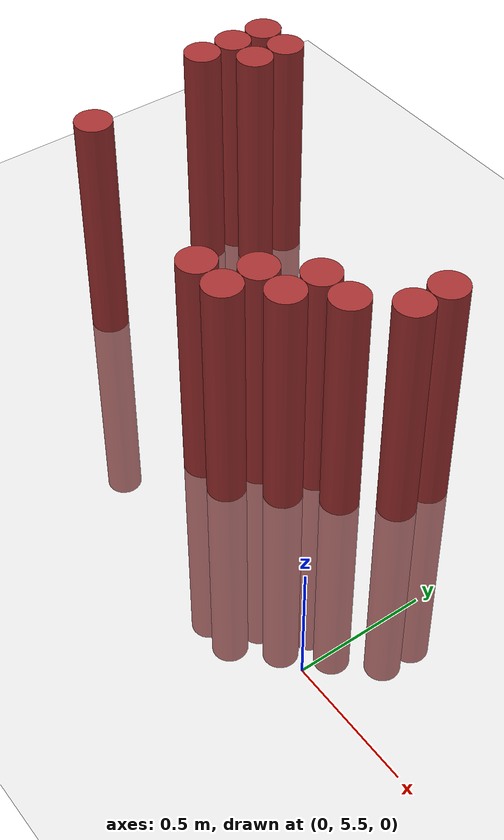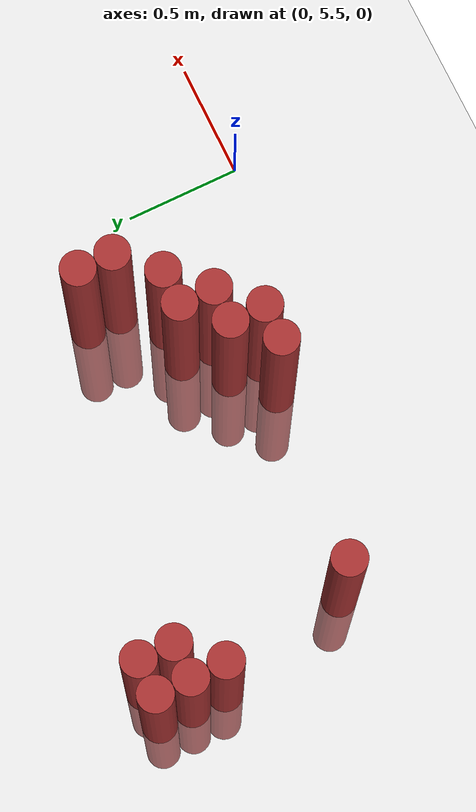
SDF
<sdf version="1.6">
 <world name="default">
  <model name="ground_plane">
   <static>1</static>
   <link name="link">
    <collision name="collision">
     <geometry><plane><normal>0 0 1</normal><size>100 100</size></plane></geometry>
     <surface><friction><ode><mu>100</mu><mu2>50</mu2></ode></friction></surface>
    </collision>
    <visual name="visual">
     <cast_shadows>0</cast_shadows>
     <geometry><plane><normal>0 0 1</normal><size>100 100</size></plane></geometry>
     <material>
      <script><uri>file://media/materials/scripts/gazebo.material</uri><name>Gazebo/Grey</name></script>
     </material>
    </visual>
   </link>
  </model>
  <model name="unit_cylinder_161">
   <static>1</static>
   <pose>-2.025000 6.525000 0.000000 0.000000 0.000000 0.000000</pose>
   <link name="link">
    <inertial>
     <mass>1</mass>
     <inertia><ixx>0.145833</ixx><ixy>0</ixy><ixz>0</ixz><iyy>0.145833</iyy><iyz>0</iyz><izz>0.125</izz></inertia>
    </inertial>
    <collision name="collision">
     <geometry><cylinder><radius>0.075000</radius><length>2</length></cylinder></geometry>
    </collision>
    <visual name="visual">
     <geometry><cylinder><radius>0.075000</radius><length>2</length></cylinder></geometry>
     <material>
      <ambient>0.648000 0.192000 0.192000 1</ambient>
      <diffuse>0.648000 0.192000 0.192000 1</diffuse>
     </material>
     <material>
      <script><name>Gazebo/Grey</name><uri>file://media/materials/scripts/gazebo.material</uri></script>
     </material>
    </visual>
   </link>
  </model>
  <model name="unit_cylinder_162">
   <static>1</static>
   <pose>-2.025000 6.675000 0.000000 0.000000 0.000000 0.000000</pose>
   <link name="link">
    <inertial>
     <mass>1</mass>
     <inertia><ixx>0.145833</ixx><ixy>0</ixy><ixz>0</ixz><iyy>0.145833</iyy><iyz>0</iyz><izz>0.125</izz></inertia>
    </inertial>
    <collision name="collision">
     <geometry><cylinder><radius>0.075000</radius><length>2</length></cylinder></geometry>
    </collision>
    <visual name="visual">
     <geometry><cylinder><radius>0.075000</radius><length>2</length></cylinder></geometry>
     <material>
      <ambient>0.648000 0.192000 0.192000 1</ambient>
      <diffuse>0.648000 0.192000 0.192000 1</diffuse>
     </material>
     <material>
      <script><name>Gazebo/Grey</name><uri>file://media/materials/scripts/gazebo.material</uri></script>
     </material>
    </visual>
   </link>
  </model>
  <model name="unit_cylinder_163">
   <static>1</static>
   <pose>-2.025000 6.825000 0.000000 0.000000 0.000000 0.000000</pose>
   <link name="link">
    <inertial>
     <mass>1</mass>
     <inertia><ixx>0.145833</ixx><ixy>0</ixy><ixz>0</ixz><iyy>0.145833</iyy><iyz>0</iyz><izz>0.125</izz></inertia>
    </inertial>
    <collision name="collision">
     <geometry><cylinder><radius>0.075000</radius><length>2</length></cylinder></geometry>
    </collision>
    <visual name="visual">
     <geometry><cylinder><radius>0.075000</radius><length>2</length></cylinder></geometry>
     <material>
      <ambient>0.648000 0.192000 0.192000 1</ambient>
      <diffuse>0.648000 0.192000 0.192000 1</diffuse>
     </material>
     <material>
      <script><name>Gazebo/Grey</name><uri>file://media/materials/scripts/gazebo.material</uri></script>
     </material>
    </visual>
   </link>
  </model>
  <model name="unit_cylinder_166">
   <static>1</static>
   <pose>-1.875000 5.925000 0.000000 0.000000 0.000000 0.000000</pose>
   <link name="link">
    <inertial>
     <mass>1</mass>
     <inertia><ixx>0.145833</ixx><ixy>0</ixy><ixz>0</ixz><iyy>0.145833</iyy><iyz>0</iyz><izz>0.125</izz></inertia>
    </inertial>
    <collision name="collision">
     <geometry><cylinder><radius>0.075000</radius><length>2</length></cylinder></geometry>
    </collision>
    <visual name="visual">
     <geometry><cylinder><radius>0.075000</radius><length>2</length></cylinder></geometry>
     <material>
      <ambient>0.648000 0.192000 0.192000 1</ambient>
      <diffuse>0.648000 0.192000 0.192000 1</diffuse>
     </material>
     <material>
      <script><name>Gazebo/Grey</name><uri>file://media/materials/scripts/gazebo.material</uri></script>
     </material>
    </visual>
   </link>
  </model>
  <model name="unit_cylinder_167">
   <static>1</static>
   <pose>-1.875000 6.675000 0.000000 0.000000 0.000000 0.000000</pose>
   <link name="link">
    <inertial>
     <mass>1</mass>
     <inertia><ixx>0.145833</ixx><ixy>0</ixy><ixz>0</ixz><iyy>0.145833</iyy><iyz>0</iyz><izz>0.125</izz></inertia>
    </inertial>
    <collision name="collision">
     <geometry><cylinder><radius>0.075000</radius><length>2</length></cylinder></geometry>
    </collision>
    <visual name="visual">
     <geometry><cylinder><radius>0.075000</radius><length>2</length></cylinder></geometry>
     <material>
      <ambient>0.648000 0.192000 0.192000 1</ambient>
      <diffuse>0.648000 0.192000 0.192000 1</diffuse>
     </material>
     <material>
      <script><name>Gazebo/Grey</name><uri>file://media/materials/scripts/gazebo.material</uri></script>
     </material>
    </visual>
   </link>
  </model>
  <model name="unit_cylinder_168">
   <static>1</static>
   <pose>-1.875000 6.825000 0.000000 0.000000 0.000000 0.000000</pose>
   <link name="link">
    <inertial>
     <mass>1</mass>
     <inertia><ixx>0.145833</ixx><ixy>0</ixy><ixz>0</ixz><iyy>0.145833</iyy><iyz>0</iyz><izz>0.125</izz></inertia>
    </inertial>
    <collision name="collision">
     <geometry><cylinder><radius>0.075000</radius><length>2</length></cylinder></geometry>
    </collision>
    <visual name="visual">
     <geometry><cylinder><radius>0.075000</radius><length>2</length></cylinder></geometry>
     <material>
      <ambient>0.648000 0.192000 0.192000 1</ambient>
      <diffuse>0.648000 0.192000 0.192000 1</diffuse>
     </material>
     <material>
      <script><name>Gazebo/Grey</name><uri>file://media/materials/scripts/gazebo.material</uri></script>
     </material>
    </visual>
   </link>
  </model>
  <model name="unit_cylinder_173">
   <static>1</static>
   <pose>-0.975000 5.775000 0.000000 0.000000 0.000000 0.000000</pose>
   <link name="link">
    <inertial>
     <mass>1</mass>
     <inertia><ixx>0.145833</ixx><ixy>0</ixy><ixz>0</ixz><iyy>0.145833</iyy><iyz>0</iyz><izz>0.125</izz></inertia>
    </inertial>
    <collision name="collision">
     <geometry><cylinder><radius>0.075000</radius><length>2</length></cylinder></geometry>
    </collision>
    <visual name="visual">
     <geometry><cylinder><radius>0.075000</radius><length>2</length></cylinder></geometry>
     <material>
      <ambient>0.648000 0.192000 0.192000 1</ambient>
      <diffuse>0.648000 0.192000 0.192000 1</diffuse>
     </material>
     <material>
      <script><name>Gazebo/Grey</name><uri>file://media/materials/scripts/gazebo.material</uri></script>
     </material>
    </visual>
   </link>
  </model>
  <model name="unit_cylinder_177">
   <static>1</static>
   <pose>-0.825000 5.775000 0.000000 0.000000 0.000000 0.000000</pose>
   <link name="link">
    <inertial>
     <mass>1</mass>
     <inertia><ixx>0.145833</ixx><ixy>0</ixy><ixz>0</ixz><iyy>0.145833</iyy><iyz>0</iyz><izz>0.125</izz></inertia>
    </inertial>
    <collision name="collision">
     <geometry><cylinder><radius>0.075000</radius><length>2</length></cylinder></geometry>
    </collision>
    <visual name="visual">
     <geometry><cylinder><radius>0.075000</radius><length>2</length></cylinder></geometry>
     <material>
      <ambient>0.648000 0.192000 0.192000 1</ambient>
      <diffuse>0.648000 0.192000 0.192000 1</diffuse>
     </material>
     <material>
      <script><name>Gazebo/Grey</name><uri>file://media/materials/scripts/gazebo.material</uri></script>
     </material>
    </visual>
   </link>
  </model>
  <model name="unit_cylinder_178">
   <static>1</static>
   <pose>-0.825000 5.925000 0.000000 0.000000 0.000000 0.000000</pose>
   <link name="link">
    <inertial>
     <mass>1</mass>
     <inertia><ixx>0.145833</ixx><ixy>0</ixy><ixz>0</ixz><iyy>0.145833</iyy><iyz>0</iyz><izz>0.125</izz></inertia>
    </inertial>
    <collision name="collision">
     <geometry><cylinder><radius>0.075000</radius><length>2</length></cylinder></geometry>
    </collision>
    <visual name="visual">
     <geometry><cylinder><radius>0.075000</radius><length>2</length></cylinder></geometry>
     <material>
      <ambient>0.648000 0.192000 0.192000 1</ambient>
      <diffuse>0.648000 0.192000 0.192000 1</diffuse>
     </material>
     <material>
      <script><name>Gazebo/Grey</name><uri>file://media/materials/scripts/gazebo.material</uri></script>
     </material>
    </visual>
   </link>
  </model>
  <model name="unit_cylinder_180">
   <static>1</static>
   <pose>-0.675000 5.925000 0.000000 0.000000 0.000000 0.000000</pose>
   <link name="link">
    <inertial>
     <mass>1</mass>
     <inertia><ixx>0.145833</ixx><ixy>0</ixy><ixz>0</ixz><iyy>0.145833</iyy><iyz>0</iyz><izz>0.125</izz></inertia>
    </inertial>
    <collision name="collision">
     <geometry><cylinder><radius>0.075000</radius><length>2</length></cylinder></geometry>
    </collision>
    <visual name="visual">
     <geometry><cylinder><radius>0.075000</radius><length>2</length></cylinder></geometry>
     <material>
      <ambient>0.648000 0.192000 0.192000 1</ambient>
      <diffuse>0.648000 0.192000 0.192000 1</diffuse>
     </material>
     <material>
      <script><name>Gazebo/Grey</name><uri>file://media/materials/scripts/gazebo.material</uri></script>
     </material>
    </visual>
   </link>
  </model>
  <model name="unit_cylinder_181">
   <static>1</static>
   <pose>-0.675000 6.075000 0.000000 0.000000 0.000000 0.000000</pose>
   <link name="link">
    <inertial>
     <mass>1</mass>
     <inertia><ixx>0.145833</ixx><ixy>0</ixy><ixz>0</ixz><iyy>0.145833</iyy><iyz>0</iyz><izz>0.125</izz></inertia>
    </inertial>
    <collision name="collision">
     <geometry><cylinder><radius>0.075000</radius><length>2</length></cylinder></geometry>
    </collision>
    <visual name="visual">
     <geometry><cylinder><radius>0.075000</radius><length>2</length></cylinder></geometry>
     <material>
      <ambient>0.648000 0.192000 0.192000 1</ambient>
      <diffuse>0.648000 0.192000 0.192000 1</diffuse>
     </material>
     <material>
      <script><name>Gazebo/Grey</name><uri>file://media/materials/scripts/gazebo.material</uri></script>
     </material>
    </visual>
   </link>
  </model>
  <model name="unit_cylinder_182">
   <static>1</static>
   <pose>-0.525000 6.075000 0.000000 0.000000 0.000000 0.000000</pose>
   <link name="link">
    <inertial>
     <mass>1</mass>
     <inertia><ixx>0.145833</ixx><ixy>0</ixy><ixz>0</ixz><iyy>0.145833</iyy><iyz>0</iyz><izz>0.125</izz></inertia>
    </inertial>
    <collision name="collision">
     <geometry><cylinder><radius>0.075000</radius><length>2</length></cylinder></geometry>
    </collision>
    <visual name="visual">
     <geometry><cylinder><radius>0.075000</radius><length>2</length></cylinder></geometry>
     <material>
      <ambient>0.648000 0.192000 0.192000 1</ambient>
      <diffuse>0.648000 0.192000 0.192000 1</diffuse>
     </material>
     <material>
      <script><name>Gazebo/Grey</name><uri>file://media/materials/scripts/gazebo.material</uri></script>
     </material>
    </visual>
   </link>
  </model>
  <model name="unit_cylinder_183">
   <static>1</static>
   <pose>-0.375000 6.225000 0.000000 0.000000 0.000000 0.000000</pose>
   <link name="link">
    <inertial>
     <mass>1</mass>
     <inertia><ixx>0.145833</ixx><ixy>0</ixy><ixz>0</ixz><iyy>0.145833</iyy><iyz>0</iyz><izz>0.125</izz></inertia>
    </inertial>
    <collision name="collision">
     <geometry><cylinder><radius>0.075000</radius><length>2</length></cylinder></geometry>
    </collision>
    <visual name="visual">
     <geometry><cylinder><radius>0.075000</radius><length>2</length></cylinder></geometry>
     <material>
      <ambient>0.648000 0.192000 0.192000 1</ambient>
      <diffuse>0.648000 0.192000 0.192000 1</diffuse>
     </material>
     <material>
      <script><name>Gazebo/Grey</name><uri>file://media/materials/scripts/gazebo.material</uri></script>
     </material>
    </visual>
   </link>
  </model>
  <model name="unit_cylinder_184">
   <static>1</static>
   <pose>-0.375000 6.375000 0.000000 0.000000 0.000000 0.000000</pose>
   <link name="link">
    <inertial>
     <mass>1</mass>
     <inertia><ixx>0.145833</ixx><ixy>0</ixy><ixz>0</ixz><iyy>0.145833</iyy><iyz>0</iyz><izz>0.125</izz></inertia>
    </inertial>
    <collision name="collision">
     <geometry><cylinder><radius>0.075000</radius><length>2</length></cylinder></geometry>
    </collision>
    <visual name="visual">
     <geometry><cylinder><radius>0.075000</radius><length>2</length></cylinder></geometry>
     <material>
      <ambient>0.648000 0.192000 0.192000 1</ambient>
      <diffuse>0.648000 0.192000 0.192000 1</diffuse>
     </material>
     <material>
      <script><name>Gazebo/Grey</name><uri>file://media/materials/scripts/gazebo.material</uri></script>
     </material>
    </visual>
   </link>
  </model>
 </world>
</sdf>
